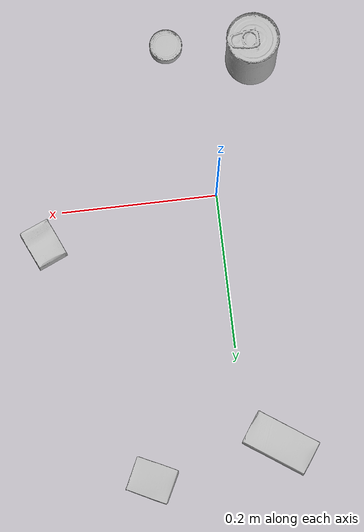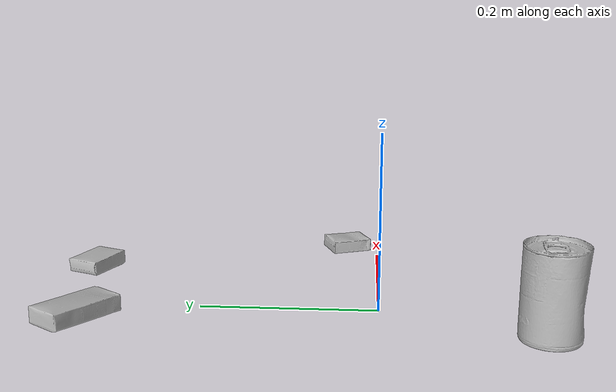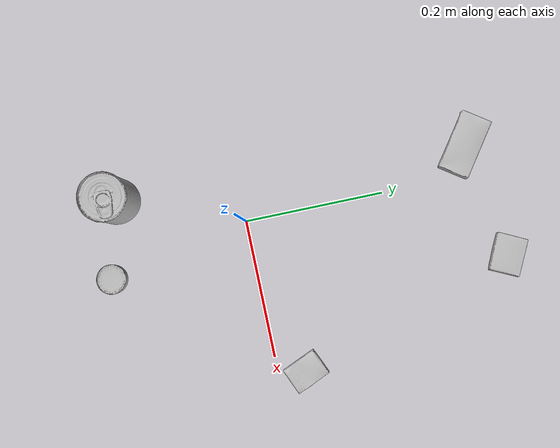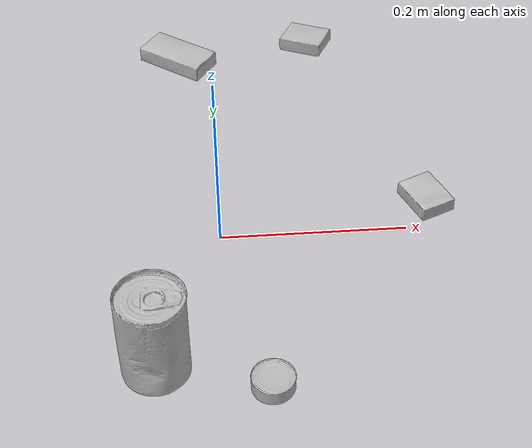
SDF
<sdf version="1.4">
  <world name="default">
    <light name="light1" type="point">
      <pose>0 0 1 0 0 0</pose>
      <diffuse>3 3 3 1</diffuse>
      <specular>3 3 3 1</specular>
    </light>
    <light name="light2" type="point">
      <pose>0 0.5 2 0 0 0</pose>
      <diffuse>1 1 1 1</diffuse>
      <specular>1 1 1 1</specular>
    </light>
    <light name="light3" type="point">
      <pose>0 0.5 2 0 0 0</pose>
      <diffuse>3 3 3 1</diffuse>
      <specular>3 3 3 1</specular>
    </light>
    <scene>
      <ambient>0.7 0.7 0.7</ambient>
    </scene>
    <model name="box1">
      <link name="link_box1">
        <collision name="default">
          <geometry>
            <mesh>
              <uri>model://cracker_box/collision_meshes/collision.obj</uri>
              <scale>0.25 0.25 0.25</scale>
            </mesh>
          </geometry>
          <surface>
            <friction>
              <ode>
                <mu>0.5</mu>
                <mu2>0.5</mu2>
              </ode>
            </friction>
          <contact>
        <ode>
            <max_vel>0</max_vel>
            <min_depth>0.0001</min_depth>
            <kp>1e8</kp>
        </ode>
    </contact></surface>
        </collision>
        <visual name="default">
          <geometry>
            <mesh>
              <uri>model://cracker_box/visual_meshes/visual.dae</uri>
              <scale>0.25 0.25 0.25</scale>
            </mesh>
          </geometry>
        </visual>
        <inertial>
          <mass>0.029061755165457726</mass>
          <pose>0.00023660456645302474 6.358561950037256e-05 -0.0004257383698131889 -0.0003162077745192934 -0.011106489600167671 0.002546795235645709</pose>
          <inertia>
            <ixx>4.620008e-06</ixx>
            <iyy>7.6285405e-06</iyy>
            <izz>1.0886628e-05</izz>
            <ixy>0</ixy>
            <ixz>0</ixz>
            <iyz>0</iyz>
          </inertia>
        </inertial>
      </link>
      <pose>0.22830548882484436 0.040314093232154846 0.009096028283238411 -0.01405061084332446 -0.005016559225952275 1.9784982842242973</pose>
    </model>
    <model name="box2">
      <link name="link_box2">
        <collision name="default">
          <geometry>
            <mesh>
              <uri>model://sugar_box/collision_meshes/collision.obj</uri>
              <scale>0.5 0.5 0.5</scale>
            </mesh>
          </geometry>
          <surface>
            <friction>
              <ode>
                <mu>0.5</mu>
                <mu2>0.5</mu2>
              </ode>
            </friction>
          <contact>
        <ode>
            <max_vel>0</max_vel>
            <min_depth>0.0001</min_depth>
            <kp>1e8</kp>
        </ode>
    </contact></surface>
        </collision>
        <visual name="default">
          <geometry>
            <mesh>
              <uri>model://sugar_box/visual_meshes/visual.dae</uri>
              <scale>0.5 0.5 0.5</scale>
            </mesh>
          </geometry>
        </visual>
        <inertial>
          <mass>0.08909860998392105</mass>
          <pose>0.0005171863595023751 1.924554817378521e-05 -0.00018182402709499002 -0.00040462606756407727 0.0010506635218583888 0.002615378789044619</pose>
          <inertia>
            <ixx>1.8559176e-05</ixx>
            <iyy>5.9987076e-05</iyy>
            <izz>7.181169e-05</izz>
            <ixy>0</ixy>
            <ixz>0</ixz>
            <iyz>0</iyz>
          </inertia>
        </inertial>
      </link>
      <pose>-0.04205165430903435 0.32858261466026306 0.011399303562939167 0.0007754443245990505 -0.023433257514294065 2.532513822692538</pose>
    </model>
    <model name="box3">
      <link name="link_box3">
        <collision name="default">
          <geometry>
            <mesh>
              <uri>model://pudding_box/collision_meshes/collision.obj</uri>
              <scale>0.5 0.5 0.5</scale>
            </mesh>
          </geometry>
          <surface>
            <friction>
              <ode>
                <mu>0.5</mu>
                <mu2>0.5</mu2>
              </ode>
            </friction>
          <contact>
        <ode>
            <max_vel>0</max_vel>
            <min_depth>0.0001</min_depth>
            <kp>1e8</kp>
        </ode>
    </contact></surface>
        </collision>
        <visual name="default">
          <geometry>
            <mesh>
              <uri>model://pudding_box/visual_meshes/visual.dae</uri>
              <scale>0.5 0.5 0.5</scale>
            </mesh>
          </geometry>
        </visual>
        <inertial>
          <mass>0.058397307991981506</mass>
          <pose>0.00024474109522998333 0.000403394311433658 -0.0002594413817860186 0.005213099939270767 -0.006603797768571226 0.020079825168092046</pose>
          <inertia>
            <ixx>1.650379e-05</ixx>
            <iyy>1.1103868e-05</iyy>
            <izz>2.437216e-05</izz>
            <ixy>0</ixy>
            <ixz>0</ixz>
            <iyz>0</iyz>
          </inertia>
        </inertial>
      </link>
      <pose>0.1241631954908371 0.35704120993614197 0.009862907230854034 0.02234815765298025 -0.011392035414783003 -2.0255728119127014</pose>
    </model>
    <model name="can1">
      <link name="link_can1">
        <collision name="default">
          <geometry>
            <mesh>
              <uri>model://tuna_fish_can/collision_meshes/collision.obj</uri>
              <scale>0.5 0.5 0.5</scale>
            </mesh>
          </geometry>
          <surface>
            <friction>
              <ode>
                <mu>0.5</mu>
                <mu2>0.5</mu2>
              </ode>
            </friction>
          <contact>
        <ode>
            <max_vel>0</max_vel>
            <min_depth>0.0001</min_depth>
            <kp>1e8</kp>
        </ode>
    </contact></surface>
        </collision>
        <visual name="default">
          <geometry>
            <mesh>
              <uri>model://tuna_fish_can/visual_meshes/visual.dae</uri>
              <scale>0.5 0.5 0.5</scale>
            </mesh>
          </geometry>
        </visual>
        <inertial>
          <mass>0.024247437715530396</mass>
          <pose>-2.0361860151751898e-05 -7.256063781824196e-06 -0.000526902440469712 -0.0017944785229743307 0.0001716120442354053 0.2405371667019961</pose>
          <inertia>
            <ixx>3.2782896e-06</ixx>
            <iyy>3.2646258e-06</iyy>
            <izz>5.609621e-06</izz>
            <ixy>0</ixy>
            <ixz>0</ixz>
            <iyz>0</iyz>
          </inertia>
        </inertial>
      </link>
      <pose>0.0424237996339798 -0.20437537133693695 0.00851999782025814 2.8816113117828743e-09 -1.5503614920459262e-09 2.477784069743045</pose>
    </model>
    <model name="can2">
      <link name="link_can2">
        <collision name="default">
          <geometry>
            <mesh>
              <uri>model://tomato_soup_can/collision_meshes/collision.obj</uri>
              <scale>1.0 1.0 1.0</scale>
            </mesh>
          </geometry>
          <surface>
            <friction>
              <ode>
                <mu>0.5</mu>
                <mu2>0.5</mu2>
              </ode>
            </friction>
          <contact>
        <ode>
            <max_vel>0</max_vel>
            <min_depth>0.0001</min_depth>
            <kp>1e8</kp>
        </ode>
    </contact></surface>
        </collision>
        <visual name="default">
          <geometry>
            <mesh>
              <uri>model://tomato_soup_can/visual_meshes/visual.dae</uri>
              <scale>1.0 1.0 1.0</scale>
            </mesh>
          </geometry>
        </visual>
        <inertial>
          <mass>0.44329848885536194</mass>
          <pose>0.0001265227037947625 0.00010805520287249237 -0.0017973989015445113 0.007020066893531886 0.00042299576578658417 -0.009903435969571123</pose>
          <inertia>
            <ixx>0.00048603912</ixx>
            <iyy>0.0004832301</iyy>
            <izz>0.00025190957</izz>
            <ixy>0</ixy>
            <ixz>0</ixz>
            <iyz>0</iyz>
          </inertia>
        </inertial>
      </link>
      <pose>-0.06561588495969772 -0.17512856423854828 0.05127402022480965 -2.7318325214019693e-07 -2.3722443978295695e-07 1.2996037032090293</pose>
    </model>
  <physics type="ode">
      <max_contacts>50</max_contacts>
      <ode>
        <solver>
          <type>quick</type>
          <iters>75</iters>
        </solver>
        <constraints>
          <contact_max_correcting_vel>0</contact_max_correcting_vel>
          <contact_surface_layer>0</contact_surface_layer>
        </constraints>
      </ode>
    </physics></world>
</sdf>
